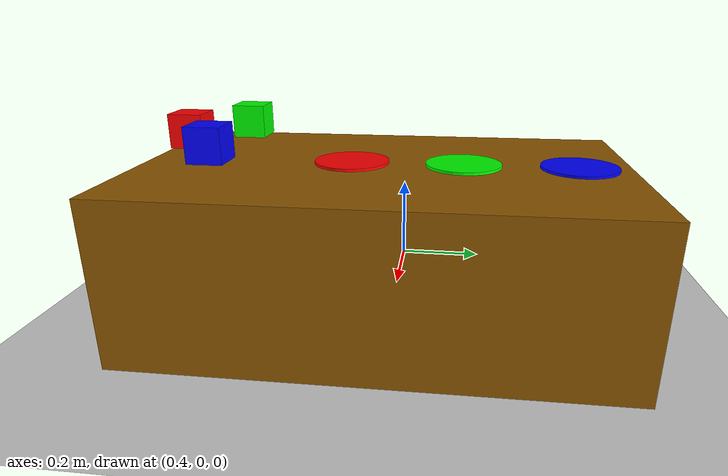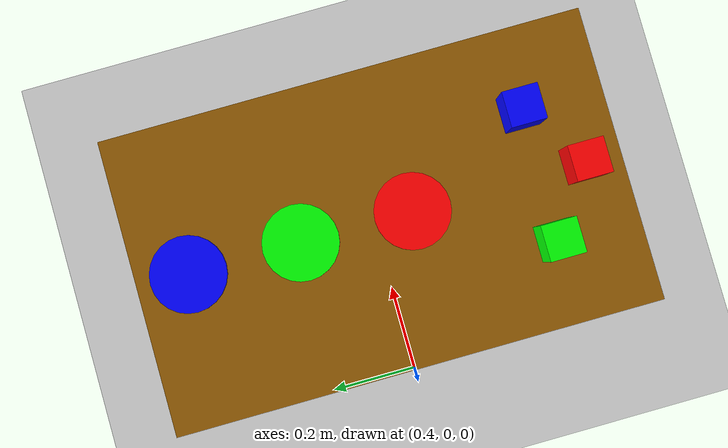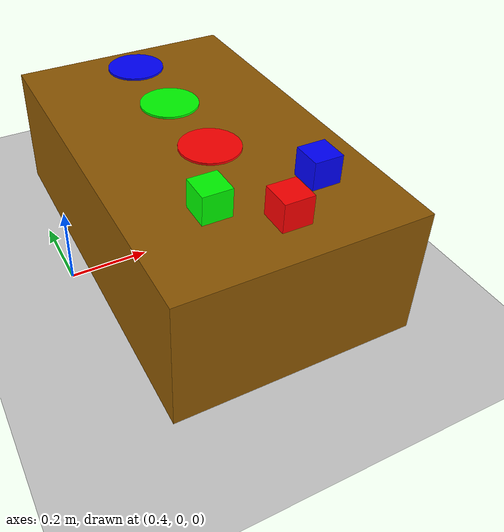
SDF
<sdf version='1.7'>
  <world name='default'>
    <light name='sun' type='directional'>
      <cast_shadows>1</cast_shadows>
      <pose>0 0 10 0 -0 0</pose>
      <diffuse>0.8 0.8 0.8 1</diffuse>
      <specular>0.2 0.2 0.2 1</specular>
      <attenuation>
        <range>1000</range>
        <constant>0.9</constant>
        <linear>0.01</linear>
        <quadratic>0.001</quadratic>
      </attenuation>
      <direction>-0.5 0.1 -0.9</direction>
      <spot>
        <inner_angle>0</inner_angle>
        <outer_angle>0</outer_angle>
        <falloff>0</falloff>
      </spot>
    </light>
    <model name='ground_plane'>
      <static>1</static>
      <link name='link'>
        <collision name='collision'>
          <geometry>
            <plane>
              <normal>0 0 1</normal>
              <size>100 100</size>
            </plane>
          </geometry>
          <surface>
            <contact>
              <collide_bitmask>65535</collide_bitmask>
              <ode/>
            </contact>
            <friction>
              <ode>
                <mu>100</mu>
                <mu2>50</mu2>
              </ode>
              <torsional>
                <ode/>
              </torsional>
            </friction>
            <bounce/>
          </surface>
          <max_contacts>10</max_contacts>
        </collision>
        <visual name='visual'>
          <cast_shadows>0</cast_shadows>
          <geometry>
            <plane>
              <normal>0 0 1</normal>
              <size>100 100</size>
            </plane>
          </geometry>
          <material>
            <script>
              <uri>file://media/materials/scripts/gazebo.material</uri>
              <name>Gazebo/Grey</name>
            </script>
          </material>
        </visual>
        <self_collide>0</self_collide>
        <enable_wind>0</enable_wind>
        <kinematic>0</kinematic>
      </link>
    </model>
    <gravity>0 0 -9.8</gravity>
    <magnetic_field>6e-06 2.3e-05 -4.2e-05</magnetic_field>
    <atmosphere type='adiabatic'/>
    <physics type='ode'>
      <max_step_size>0.001</max_step_size>
      <real_time_factor>1</real_time_factor>
      <real_time_update_rate>1000</real_time_update_rate>
    </physics>
    <scene>
      <ambient>0.4 0.4 0.4 1</ambient>
      <background>0.7 0.7 0.7 1</background>
      <shadows>1</shadows>
    </scene>
    <wind/>
    <spherical_coordinates>
      <surface_model>EARTH_WGS84</surface_model>
      <latitude_deg>0</latitude_deg>
      <longitude_deg>0</longitude_deg>
      <elevation>0</elevation>
      <heading_deg>0</heading_deg>
    </spherical_coordinates>
    <light name='user_spot_light_0' type='spot'>
      <pose>0.750169 -0.012612 4 0 -0 0</pose>
      <diffuse>0.5 0.5 0.5 1</diffuse>
      <specular>0.1 0.1 0.1 1</specular>
      <direction>0 0 -1</direction>
      <attenuation>
        <range>20</range>
        <constant>0.5</constant>
        <linear>0.01</linear>
        <quadratic>0.001</quadratic>
      </attenuation>
      <cast_shadows>0</cast_shadows>
      <spot>
        <inner_angle>0.6</inner_angle>
        <outer_angle>1</outer_angle>
        <falloff>1</falloff>
      </spot>
    </light>
    <gui fullscreen='0'>
      <camera name='user_camera'>
        <pose>1.62455 1.99984 2.33534 0 0.7138 -1.99852</pose>
        <view_controller>orbit</view_controller>
        <projection_type>perspective</projection_type>
      </camera>
    </gui>
    <model name='table'>
      <link name='link_0'>
        <inertial>
          <mass>0.209047</mass>
          <inertia>
            <ixx>0.0194914</ixx>
            <ixy>0</ixy>
            <ixz>0</ixz>
            <iyy>0.0084732</iyy>
            <iyz>0</iyz>
            <izz>0.0238229</izz>
          </inertia>
          <pose>0 0 0 0 -0 0</pose>
        </inertial>
        <pose>0 0 0 0 -0 0</pose>
        <gravity>1</gravity>
        <self_collide>0</self_collide>
        <kinematic>0</kinematic>
        <enable_wind>0</enable_wind>
        <visual name='visual'>
          <pose>0 0 0 0 -0 0</pose>
          <geometry>
            <box>
              <size>0.606231 1 0.344783</size>
            </box>
          </geometry>
          <material>
            <lighting>1</lighting>
            <script>
              <uri>file://media/materials/scripts/gazebo.material</uri>
              <name>Gazebo/Grey</name>
            </script>
            <shader type='pixel'>
              <normal_map>__default__</normal_map>
            </shader>
            <ambient>0.561 0.349 0.008 1</ambient>
            <diffuse>0 0 0 1</diffuse>
            <specular>0 0 0 1</specular>
            <emissive>0 0 0 1</emissive>
          </material>
          <transparency>0</transparency>
          <cast_shadows>1</cast_shadows>
        </visual>
      </link>
      <static>1</static>
      <allow_auto_disable>1</allow_auto_disable>
      <pose>0.750169 -0.012612 0.162985 0 -0 0</pose>
    </model>
    <model name='cube_r'>
      <link name='link'>
        <inertial>
          <mass>1</mass>
          <inertia>
            <ixx>0.166667</ixx>
            <ixy>0</ixy>
            <ixz>0</ixz>
            <iyy>0.166667</iyy>
            <iyz>0</iyz>
            <izz>0.166667</izz>
          </inertia>
          <pose>0 0 0 0 -0 0</pose>
        </inertial>
        <self_collide>0</self_collide>
        <enable_wind>0</enable_wind>
        <kinematic>0</kinematic>
        <pose>0 0 0 0 -0 0</pose>
        <gravity>0</gravity>
        <visual name='visual'>
          <pose>0 0 0 0 -0 0</pose>
          <geometry>
            <box>
              <size>0.07 0.07 0.07</size>
            </box>
          </geometry>
          <material>
            <lighting>1</lighting>
            <script>
              <uri>file://media/materials/scripts/gazebo.material</uri>
              <name>Gazebo/Grey</name>
            </script>
            <shader type='pixel'>
              <normal_map>__default__</normal_map>
            </shader>
            <ambient>1 0 0 1</ambient>
            <diffuse>0.7 0.7 0.7 1</diffuse>
            <specular>0.01 0.01 0.01 1</specular>
            <emissive>0 0 0 1</emissive>
          </material>
          <transparency>0</transparency>
          <cast_shadows>1</cast_shadows>
        </visual>
      </link>
      <static>0</static>
      <allow_auto_disable>1</allow_auto_disable>
      <pose>0.75 -0.42 0.40 0 -0 0</pose>
    </model>
    <model name='cube_b'>
      <link name='link'>
        <inertial>
          <mass>1</mass>
          <inertia>
            <ixx>0.166667</ixx>
            <ixy>0</ixy>
            <ixz>0</ixz>
            <iyy>0.166667</iyy>
            <iyz>0</iyz>
            <izz>0.166667</izz>
          </inertia>
          <pose>0 0 0 0 -0 0</pose>
        </inertial>
        <self_collide>0</self_collide>
        <enable_wind>0</enable_wind>
        <kinematic>0</kinematic>
        <pose>0 0 0 0 -0 0</pose>
        <gravity>0</gravity>
        <visual name='visual'>
          <geometry>
            <box>
              <size>0.07 0.07 0.07</size>
            </box>
          </geometry>
          <material>
            <script>
              <name>Gazebo/Grey</name>
              <uri>file://media/materials/scripts/gazebo.material</uri>
            </script>
            <shader type='pixel'>
              <normal_map>__default__</normal_map>
            </shader>
            <ambient>0 0 1 1</ambient>
            <diffuse>0 0 1 1</diffuse>
            <specular>0.1 0.1 0.1 1</specular>
            <emissive>0 0 0 1</emissive>
          </material>
          <pose>0 0 0 0 -0 0</pose>
          <transparency>0</transparency>
          <cast_shadows>1</cast_shadows>
        </visual>
      </link>
      <static>0</static>
      <allow_auto_disable>1</allow_auto_disable>
      <pose>0.88 -0.33 0.40 0 -0 0</pose>
    </model>
    <model name='cube_g'>
      <link name='link'>
        <inertial>
          <mass>1</mass>
          <inertia>
            <ixx>0.166667</ixx>
            <ixy>0</ixy>
            <ixz>0</ixz>
            <iyy>0.166667</iyy>
            <iyz>0</iyz>
            <izz>0.166667</izz>
          </inertia>
          <pose>0 0 0 0 -0 0</pose>
        </inertial>
        <self_collide>0</self_collide>
        <enable_wind>0</enable_wind>
        <kinematic>0</kinematic>
        <pose>0 0 0 0 -0 0</pose>
        <gravity>0</gravity>
        <visual name='visual'>
          <pose>0 0 0 0 -0 0</pose>
          <geometry>
            <box>
              <size>0.07 0.07 0.07</size>
            </box>
          </geometry>
          <material>
            <lighting>1</lighting>
            <script>
              <uri>file://media/materials/scripts/gazebo.material</uri>
              <name>Gazebo/Grey</name>
            </script>
            <shader type='pixel'>
              <normal_map>__default__</normal_map>
            </shader>
            <ambient>0 1 0 1</ambient>
            <diffuse>0.7 0.7 0.7 1</diffuse>
            <specular>0.01 0.01 0.01 1</specular>
            <emissive>0 0 0 1</emissive>
          </material>
          <transparency>0</transparency>
          <cast_shadows>1</cast_shadows>
        </visual>
      </link>
      <static>0</static>
      <allow_auto_disable>1</allow_auto_disable>
      <pose>0.62 -0.33 0.40 0 -0 0</pose>
    </model>
    <model name='loc_1'>
      <link name='link'>
        <inertial>
          <mass>1</mass>
          <inertia>
            <ixx>0.145833</ixx>
            <ixy>0</ixy>
            <ixz>0</ixz>
            <iyy>0.145833</iyy>
            <iyz>0</iyz>
            <izz>0.125</izz>
          </inertia>
          <pose>0 0 0 0 -0 0</pose>
        </inertial>
        <self_collide>0</self_collide>
        <enable_wind>0</enable_wind>
        <kinematic>0</kinematic>
        <pose>0 0 0 0 -0 0</pose>
        <gravity>0</gravity>
        <visual name='visual'>
          <geometry>
            <cylinder>
              <radius>0.0774303</radius>
              <length>0.00570894</length>
            </cylinder>
          </geometry>
          <material>
            <script>
              <name>Gazebo/Grey</name>
              <uri>file://media/materials/scripts/gazebo.material</uri>
            </script>
            <shader type='pixel'>
              <normal_map>__default__</normal_map>
            </shader>
            <diffuse>0 0 1 1</diffuse>
            <ambient>0.3 0.3 0.3 1</ambient>
            <specular>0.01 0.01 0.01 1</specular>
            <emissive>0 0 0 1</emissive>
          </material>
          <pose>0 0 0 0 -0 0</pose>
          <transparency>0</transparency>
          <cast_shadows>1</cast_shadows>
        </visual>
      </link>
      <static>0</static>
      <allow_auto_disable>1</allow_auto_disable>
      <pose>0.75 0.38 0.34 0 -0 0</pose>
    </model>
    <model name='loc_2'>
      <link name='link'>
        <inertial>
          <mass>1</mass>
          <inertia>
            <ixx>0.145833</ixx>
            <ixy>0</ixy>
            <ixz>0</ixz>
            <iyy>0.145833</iyy>
            <iyz>0</iyz>
            <izz>0.125</izz>
          </inertia>
          <pose>0 0 0 0 -0 0</pose>
        </inertial>
        <self_collide>0</self_collide>
        <enable_wind>0</enable_wind>
        <kinematic>0</kinematic>
        <pose>0 0 0 0 -0 0</pose>
        <gravity>0</gravity>
        <visual name='visual'>
          <geometry>
            <cylinder>
              <radius>0.0774303</radius>
              <length>0.00570894</length>
            </cylinder>
          </geometry>
          <material>
            <script>
              <name>Gazebo/Grey</name>
              <uri>file://media/materials/scripts/gazebo.material</uri>
            </script>
            <shader type='pixel'>
              <normal_map>__default__</normal_map>
            </shader>
            <diffuse>1 0 0 1</diffuse>
            <ambient>0.3 0.3 0.3 1</ambient>
            <specular>0.01 0.01 0.01 1</specular>
            <emissive>0 0 0 1</emissive>
          </material>
          <pose>0 0 0 0 -0 0</pose>
          <transparency>0</transparency>
          <cast_shadows>1</cast_shadows>
        </visual>
      </link>
      <static>0</static>
      <allow_auto_disable>1</allow_auto_disable>
      <pose>0.75 -0.08 0.34 0 -0 0</pose>
    </model>
    <model name='loc_3'>
      <link name='link'>
        <inertial>
          <mass>1</mass>
          <inertia>
            <ixx>0.145833</ixx>
            <ixy>0</ixy>
            <ixz>0</ixz>
            <iyy>0.145833</iyy>
            <iyz>0</iyz>
            <izz>0.125</izz>
          </inertia>
          <pose>0 0 0 0 -0 0</pose>
        </inertial>
        <self_collide>0</self_collide>
        <enable_wind>0</enable_wind>
        <kinematic>0</kinematic>
        <pose>0 0 0 0 -0 0</pose>
        <gravity>0</gravity>
        <visual name='visual'>
          <geometry>
            <cylinder>
              <radius>0.0774303</radius>
              <length>0.00570894</length>
            </cylinder>
          </geometry>
          <material>
            <script>
              <name>Gazebo/Grey</name>
              <uri>file://media/materials/scripts/gazebo.material</uri>
            </script>
            <shader type='pixel'>
              <normal_map>__default__</normal_map>
            </shader>
            <diffuse>0 1 0 1</diffuse>
            <ambient>0.3 0.3 0.3 1</ambient>
            <specular>0.01 0.01 0.01 1</specular>
            <emissive>0 0 0 1</emissive>
          </material>
          <pose>0 0 0 0 -0 0</pose>
          <transparency>0</transparency>
          <cast_shadows>1</cast_shadows>
        </visual>
      </link>
      <static>0</static>
      <allow_auto_disable>1</allow_auto_disable>
      <pose>0.75 0.15 0.34 0 -0 0</pose>
    </model>
  </world>
</sdf>
